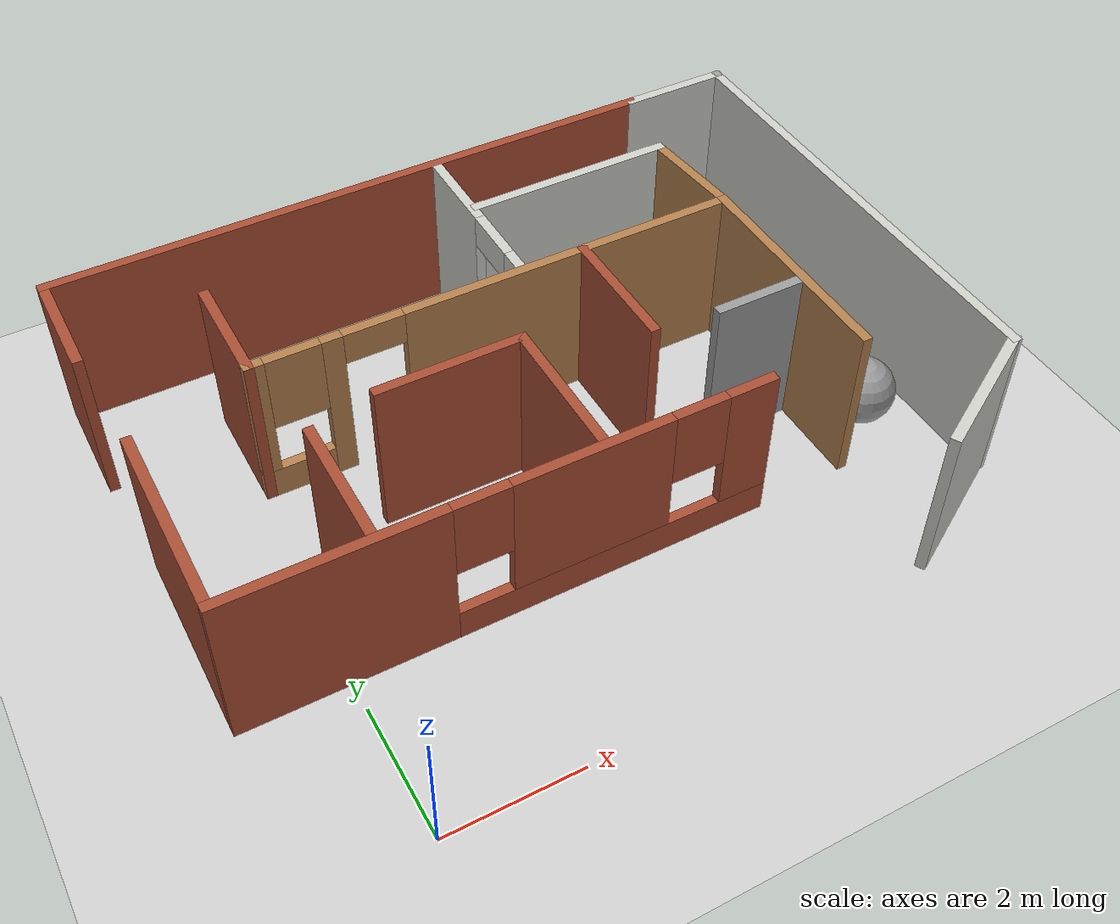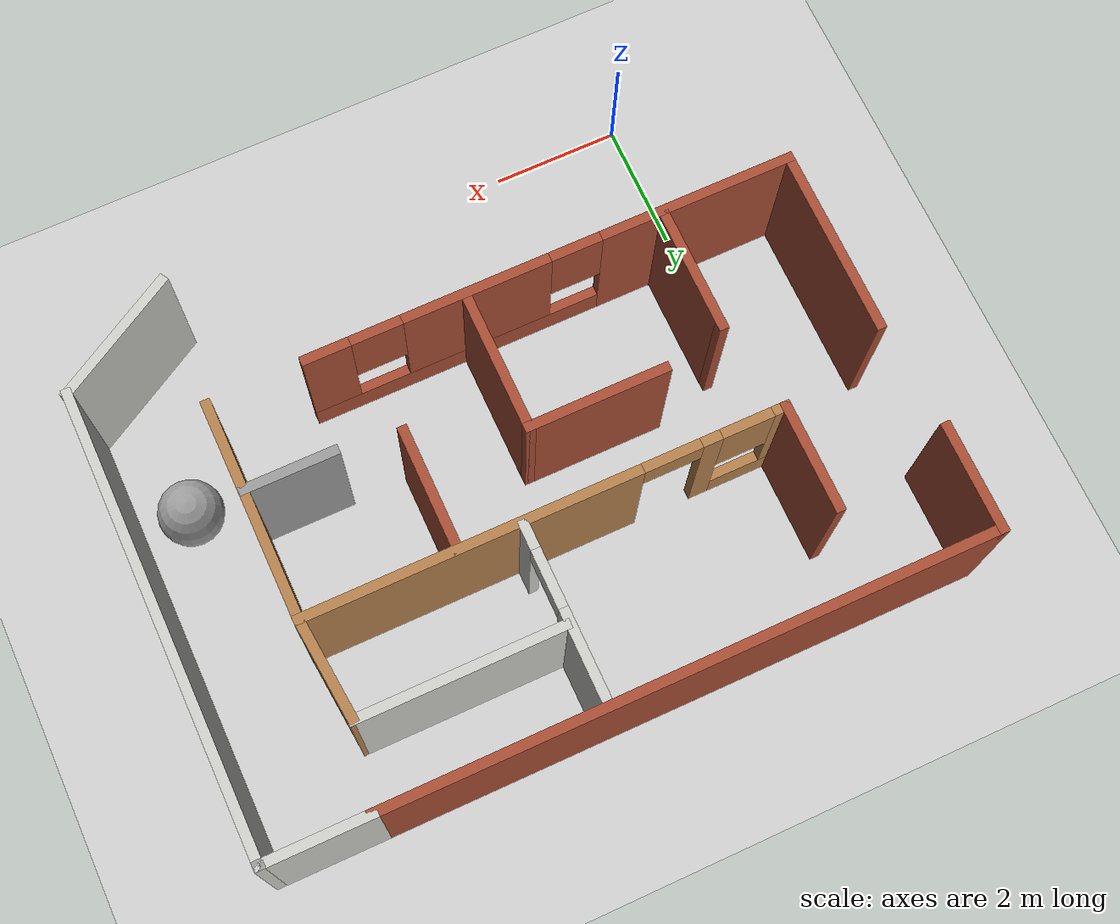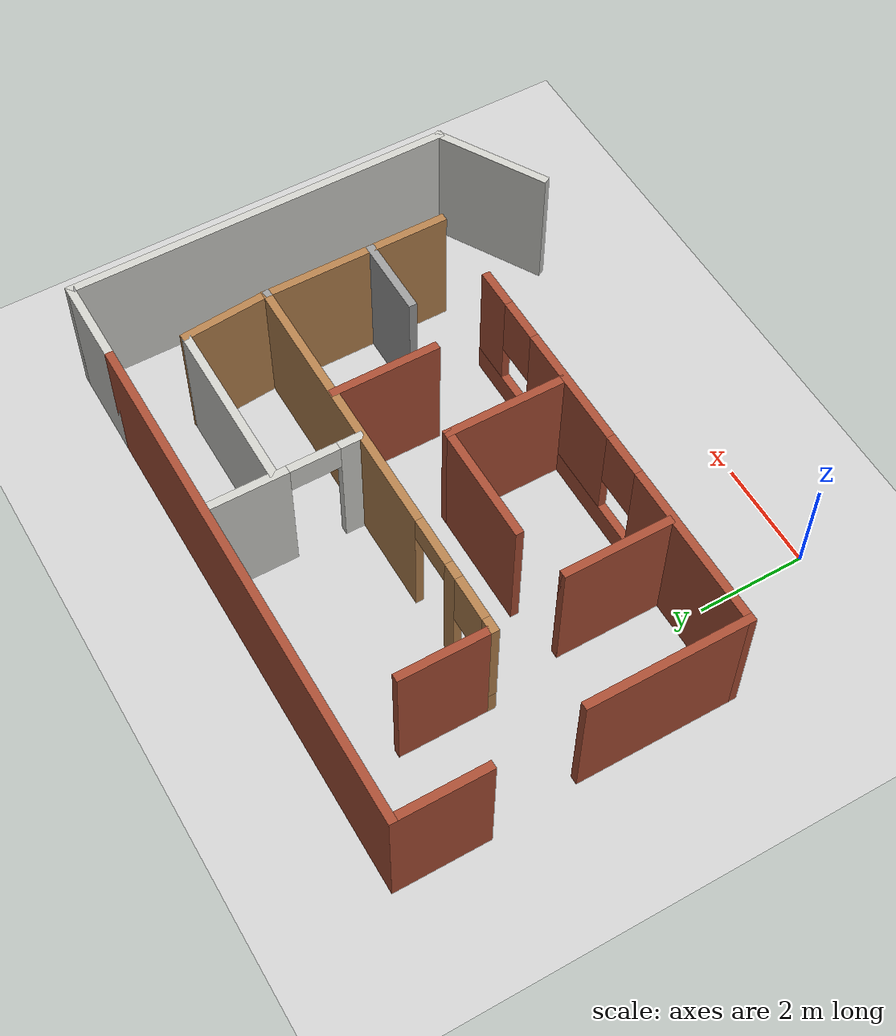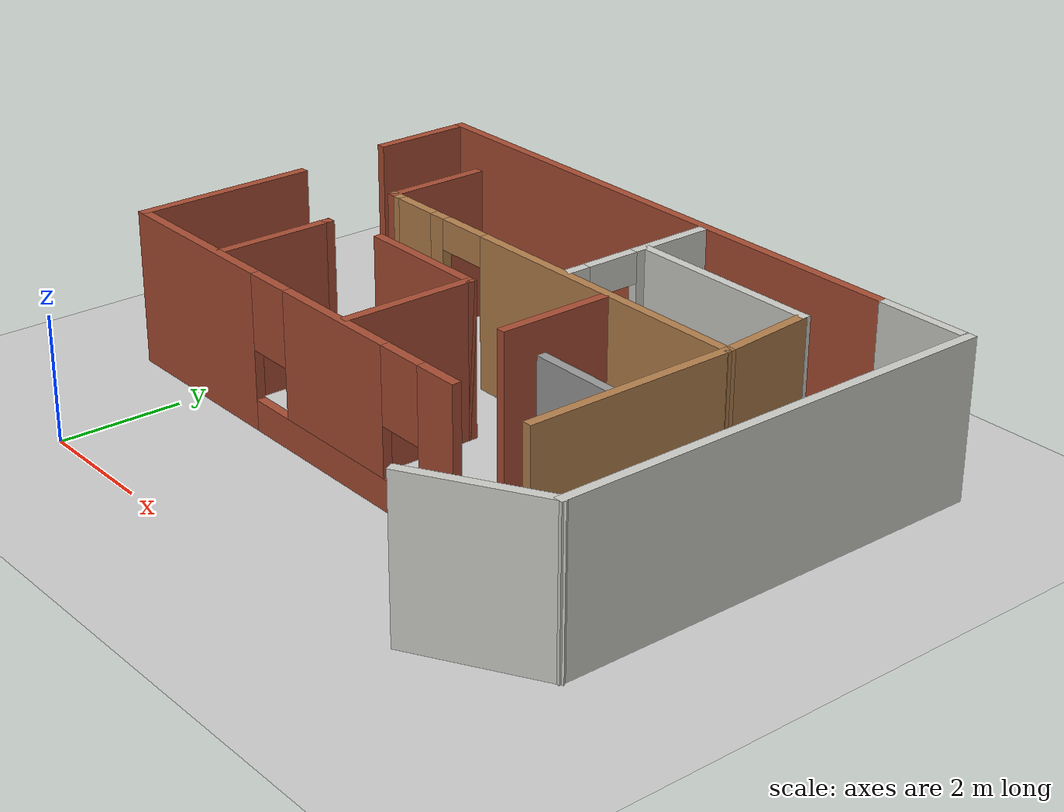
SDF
<sdf version="1.7">
 <world name="default">
  <light name="sun" type="directional">
   <pose>0 0 10 0 -0 0</pose>
   <diffuse>0.8 0.8 0.8 1</diffuse>
   <specular>0.2 0.2 0.2 1</specular>
   <attenuation>
    <range>1000</range>
    <constant>0.9</constant>
    <linear>0.01</linear>
    <quadratic>0.001</quadratic>
   </attenuation>
   <direction>-0.5 0.1 -0.9</direction>
   <spot><inner_angle>0</inner_angle><outer_angle>0</outer_angle><falloff>0</falloff></spot>
  </light>
  <model name="ground_plane">
   <static>1</static>
   <link name="link">
    <collision name="collision">
     <geometry><plane><normal>0 0 1</normal><size>100 100</size></plane></geometry>
     <surface><friction><ode><mu>100</mu><mu2>50</mu2></ode></friction></surface>
    </collision>
    <visual name="visual">
     <cast_shadows>0</cast_shadows>
     <geometry><plane><normal>0 0 1</normal><size>100 100</size></plane></geometry>
     <material>
      <script><uri>file://media/materials/scripts/gazebo.material</uri><name>Gazebo/Grey</name></script>
     </material>
    </visual>
   </link>
  </model>
  <gravity>0 0 -9.8</gravity>
  <magnetic_field>6e-06 2.3e-05 -4.2e-05</magnetic_field>
  <atmosphere type="adiabatic"/>
  <physics type="ode">
   <max_step_size>0.001</max_step_size>
   <real_time_factor>1</real_time_factor>
   <real_time_update_rate>1000</real_time_update_rate>
  </physics>
  <scene><ambient>0.4 0.4 0.4 1</ambient><background>0.7 0.7 0.7 1</background><shadows>1</shadows></scene>
  <audio><device>default</device></audio>
  <spherical_coordinates>
   <surface_model>EARTH_WGS84</surface_model>
   <latitude_deg>0</latitude_deg>
   <longitude_deg>0</longitude_deg>
   <elevation>0</elevation>
   <heading_deg>0</heading_deg>
  </spherical_coordinates>
  <model name="Untitled">
   <pose>3.83985 4.38129 0 0 -0 0</pose>
   <link name="Wall_17">
    <pose>-1.55573 -1.88221 0 0 -0 0</pose>
    <visual name="Wall_17_Visual_0">
     <pose>-2.32929 0 1.25 0 -0 0</pose>
     <geometry><box><size>3.09143 0.15 2.5</size></box></geometry>
     <material>
      <script><uri>file://media/materials/scripts/gazebo.material</uri><name>Gazebo/Bricks</name></script>
      <ambient>1 1 1 1</ambient>
     </material>
     <meta><layer>0</layer></meta>
    </visual>
    <collision name="Wall_17_Collision_0">
     <geometry><box><size>3.09143 0.15 2.5</size></box></geometry>
     <pose>-2.32929 0 1.25 0 -0 0</pose>
    </collision>
    <visual name="Wall_17_Visual_1">
     <pose>1.54571 0 0.25 0 -0 0</pose>
     <geometry><box><size>4.65857 0.15 0.5</size></box></geometry>
     <material>
      <script><uri>file://media/materials/scripts/gazebo.material</uri><name>Gazebo/Bricks</name></script>
      <ambient>1 1 1 1</ambient>
     </material>
     <meta><layer>0</layer></meta>
    </visual>
    <collision name="Wall_17_Collision_1">
     <geometry><box><size>4.65857 0.15 0.5</size></box></geometry>
     <pose>1.54571 0 0.25 0 -0 0</pose>
    </collision>
    <visual name="Wall_17_Visual_2">
     <pose>1.17304 0 1.5 0 -0 0</pose>
     <geometry><box><size>2.31323 0.15 2</size></box></geometry>
     <material>
      <script><uri>file://media/materials/scripts/gazebo.material</uri><name>Gazebo/Bricks</name></script>
      <ambient>1 1 1 1</ambient>
     </material>
     <meta><layer>0</layer></meta>
    </visual>
    <collision name="Wall_17_Collision_2">
     <geometry><box><size>2.31323 0.15 2</size></box></geometry>
     <pose>1.17304 0 1.5 0 -0 0</pose>
    </collision>
    <visual name="Wall_17_Visual_3">
     <pose>3.50233 0 1.5 0 -0 0</pose>
     <geometry><box><size>0.74534 0.15 2</size></box></geometry>
     <material>
      <script><uri>file://media/materials/scripts/gazebo.material</uri><name>Gazebo/Bricks</name></script>
      <ambient>1 1 1 1</ambient>
     </material>
     <meta><layer>0</layer></meta>
    </visual>
    <collision name="Wall_17_Collision_3">
     <geometry><box><size>0.74534 0.15 2</size></box></geometry>
     <pose>3.50233 0 1.5 0 -0 0</pose>
    </collision>
    <visual name="Wall_17_Visual_4">
     <pose>-0.383571 0 1.9 0 -0 0</pose>
     <geometry><box><size>0.8 0.15 1.2</size></box></geometry>
     <material>
      <script><uri>file://media/materials/scripts/gazebo.material</uri><name>Gazebo/Bricks</name></script>
      <ambient>1 1 1 1</ambient>
     </material>
     <meta><layer>0</layer></meta>
    </visual>
    <collision name="Wall_17_Collision_4">
     <geometry><box><size>0.8 0.15 1.2</size></box></geometry>
     <pose>-0.383571 0 1.9 0 -0 0</pose>
    </collision>
    <visual name="Wall_17_Visual_5">
     <pose>2.72966 0 1.9 0 -0 0</pose>
     <geometry><box><size>0.8 0.15 1.2</size></box></geometry>
     <material>
      <script><uri>file://media/materials/scripts/gazebo.material</uri><name>Gazebo/Bricks</name></script>
      <ambient>1 1 1 1</ambient>
     </material>
     <meta><layer>0</layer></meta>
    </visual>
    <collision name="Wall_17_Collision_5">
     <geometry><box><size>0.8 0.15 1.2</size></box></geometry>
     <pose>2.72966 0 1.9 0 -0 0</pose>
    </collision>
   </link>
   <link name="Wall_19">
    <collision name="Wall_19_Collision">
     <geometry><box><size>3.5 0.15 2.5</size></box></geometry>
     <pose>0 0 1.25 0 -0 0</pose>
    </collision>
    <visual name="Wall_19_Visual">
     <pose>0 0 1.25 0 -0 0</pose>
     <geometry><box><size>3.5 0.15 2.5</size></box></geometry>
     <material>
      <script><uri>file://media/materials/scripts/gazebo.material</uri><name>Gazebo/Wood</name></script>
      <ambient>1 1 1 1</ambient>
     </material>
     <meta><layer>0</layer></meta>
    </visual>
    <pose>3.75227 -0.161208 0 0 -0 1.5708</pose>
   </link>
   <link name="Wall_20">
    <collision name="Wall_20_Collision">
     <geometry><box><size>0.15 0.15 2.5</size></box></geometry>
     <pose>0 0 1.25 0 -0 0</pose>
    </collision>
    <visual name="Wall_20_Visual">
     <pose>0 0 1.25 0 -0 0</pose>
     <geometry><box><size>0.15 0.15 2.5</size></box></geometry>
     <material>
      <script><uri>file://media/materials/scripts/gazebo.material</uri><name>Gazebo/Grey</name></script>
      <ambient>1 1 1 1</ambient>
     </material>
     <meta><layer>0</layer></meta>
    </visual>
    <pose>3.75227 1.51379 0 0 -0 0</pose>
   </link>
   <link name="Wall_21">
    <pose>0.077274 1.51379 0 0 -0 3.14159</pose>
    <visual name="Wall_21_Visual_0">
     <pose>-1.14419 0 1.25 0 -0 0</pose>
     <geometry><box><size>5.21163 0.15 2.5</size></box></geometry>
     <material>
      <script><uri>file://media/materials/scripts/gazebo.material</uri><name>Gazebo/Wood</name></script>
      <ambient>1 1 1 1</ambient>
     </material>
     <meta><layer>0</layer></meta>
    </visual>
    <collision name="Wall_21_Collision_0">
     <geometry><box><size>5.21163 0.15 2.5</size></box></geometry>
     <pose>-1.14419 0 1.25 0 -0 0</pose>
    </collision>
    <visual name="Wall_21_Visual_1">
     <pose>2.5138 0 1.25 0 -0 0</pose>
     <geometry><box><size>0.304344 0.15 2.5</size></box></geometry>
     <material>
      <script><uri>file://media/materials/scripts/gazebo.material</uri><name>Gazebo/Wood</name></script>
      <ambient>1 1 1 1</ambient>
     </material>
     <meta><layer>0</layer></meta>
    </visual>
    <collision name="Wall_21_Collision_1">
     <geometry><box><size>0.304344 0.15 2.5</size></box></geometry>
     <pose>2.5138 0 1.25 0 -0 0</pose>
    </collision>
    <visual name="Wall_21_Visual_2">
     <pose>3.20799 0 0.25 0 -0 0</pose>
     <geometry><box><size>1.08403 0.15 0.5</size></box></geometry>
     <material>
      <script><uri>file://media/materials/scripts/gazebo.material</uri><name>Gazebo/Wood</name></script>
      <ambient>1 1 1 1</ambient>
     </material>
     <meta><layer>0</layer></meta>
    </visual>
    <collision name="Wall_21_Collision_2">
     <geometry><box><size>1.08403 0.15 0.5</size></box></geometry>
     <pose>3.20799 0 0.25 0 -0 0</pose>
    </collision>
    <visual name="Wall_21_Visual_3">
     <pose>3.60799 0 1.5 0 -0 0</pose>
     <geometry><box><size>0.284025 0.15 2</size></box></geometry>
     <material>
      <script><uri>file://media/materials/scripts/gazebo.material</uri><name>Gazebo/Wood</name></script>
      <ambient>1 1 1 1</ambient>
     </material>
     <meta><layer>0</layer></meta>
    </visual>
    <collision name="Wall_21_Collision_3">
     <geometry><box><size>0.284025 0.15 2</size></box></geometry>
     <pose>3.60799 0 1.5 0 -0 0</pose>
    </collision>
    <visual name="Wall_21_Visual_4">
     <pose>3.06597 0 1.9 0 -0 0</pose>
     <geometry><box><size>0.8 0.15 1.2</size></box></geometry>
     <material>
      <script><uri>file://media/materials/scripts/gazebo.material</uri><name>Gazebo/Wood</name></script>
      <ambient>1 1 1 1</ambient>
     </material>
     <meta><layer>0</layer></meta>
    </visual>
    <collision name="Wall_21_Collision_4">
     <geometry><box><size>0.8 0.15 1.2</size></box></geometry>
     <pose>3.06597 0 1.9 0 -0 0</pose>
    </collision>
    <visual name="Wall_21_Visual_5">
     <pose>1.91163 0 2.25 0 -0 0</pose>
     <geometry><box><size>0.9 0.15 0.5</size></box></geometry>
     <material>
      <script><uri>file://media/materials/scripts/gazebo.material</uri><name>Gazebo/Wood</name></script>
      <ambient>1 1 1 1</ambient>
     </material>
     <meta><layer>0</layer></meta>
    </visual>
    <collision name="Wall_21_Collision_5">
     <geometry><box><size>0.9 0.15 0.5</size></box></geometry>
     <pose>1.91163 0 2.25 0 -0 0</pose>
    </collision>
   </link>
   <link name="Wall_23">
    <collision name="Wall_23_Collision">
     <geometry><box><size>3 0.15 2.5</size></box></geometry>
     <pose>0 0 1.25 0 -0 0</pose>
    </collision>
    <visual name="Wall_23_Visual">
     <pose>0 0 1.25 0 -0 0</pose>
     <geometry><box><size>3 0.15 2.5</size></box></geometry>
     <material>
      <script><uri>file://media/materials/scripts/gazebo.material</uri><name>Gazebo/Bricks</name></script>
      <ambient>1 1 1 1</ambient>
     </material>
     <meta><layer>0</layer></meta>
    </visual>
    <pose>-5.35573 -0.457208 0 0 -0 1.5708</pose>
   </link>
   <link name="Wall_25">
    <collision name="Wall_25_Collision">
     <geometry><box><size>1.75 0.15 2.5</size></box></geometry>
     <pose>0 0 1.25 0 -0 0</pose>
    </collision>
    <visual name="Wall_25_Visual">
     <pose>0 0 1.25 0 -0 0</pose>
     <geometry><box><size>1.75 0.15 2.5</size></box></geometry>
     <material>
      <script><uri>file://media/materials/scripts/gazebo.material</uri><name>Gazebo/Bricks</name></script>
      <ambient>1 1 1 1</ambient>
     </material>
     <meta><layer>0</layer></meta>
    </visual>
    <pose>-3.59773 2.31379 0 0 -0 1.5708</pose>
   </link>
   <link name="Wall_27">
    <collision name="Wall_27_Collision">
     <geometry><box><size>1.75 0.15 2.5</size></box></geometry>
     <pose>0 0 1.25 0 -0 0</pose>
    </collision>
    <visual name="Wall_27_Visual">
     <pose>0 0 1.25 0 -0 0</pose>
     <geometry><box><size>1.75 0.15 2.5</size></box></geometry>
     <material>
      <script><uri>file://media/materials/scripts/gazebo.material</uri><name>Gazebo/Bricks</name></script>
      <ambient>1 1 1 1</ambient>
     </material>
     <meta><layer>0</layer></meta>
    </visual>
    <pose>-5.49373 3.50629 0 0 -0 1.5708</pose>
   </link>
   <link name="Wall_29">
    <collision name="Wall_29_Collision">
     <geometry><box><size>9.5 0.15 2.5</size></box></geometry>
     <pose>0 0 1.25 0 -0 0</pose>
    </collision>
    <visual name="Wall_29_Visual">
     <pose>0 0 1.25 0 -0 0</pose>
     <geometry><box><size>9.5 0.15 2.5</size></box></geometry>
     <material>
      <script><uri>file://media/materials/scripts/gazebo.material</uri><name>Gazebo/Bricks</name></script>
      <ambient>1 1 1 1</ambient>
     </material>
     <meta><layer>0</layer></meta>
    </visual>
    <pose>-0.818726 4.30629 0 0 -0 0</pose>
   </link>
   <link name="Wall_30">
    <collision name="Wall_30_Collision">
     <geometry><box><size>1.75 0.15 2.5</size></box></geometry>
     <pose>0 0 1.25 0 -0 0</pose>
    </collision>
    <visual name="Wall_30_Visual">
     <pose>0 0 1.25 0 -0 0</pose>
     <geometry><box><size>1.75 0.15 2.5</size></box></geometry>
     <material>
      <script><uri>file://media/materials/scripts/gazebo.material</uri><name>Gazebo/CeilingTiled</name></script>
      <ambient>1 1 1 1</ambient>
     </material>
     <meta><layer>0</layer></meta>
    </visual>
    <pose>4.65627 4.30629 0 0 -0 0</pose>
   </link>
   <link name="Wall_31">
    <collision name="Wall_31_Collision">
     <geometry><box><size>0.16 0.15 2.5</size></box></geometry>
     <pose>0 0 1.25 0 -0 0</pose>
    </collision>
    <visual name="Wall_31_Visual">
     <pose>0 0 1.25 0 -0 0</pose>
     <geometry><box><size>0.16 0.15 2.5</size></box></geometry>
     <material>
      <script><uri>file://media/materials/scripts/gazebo.material</uri><name>Gazebo/Grey</name></script>
      <ambient>1 1 1 1</ambient>
     </material>
     <meta><layer>0</layer></meta>
    </visual>
    <pose>5.46127 4.30629 0 0 -0 0</pose>
   </link>
   <link name="Wall_32">
    <collision name="Wall_32_Collision">
     <geometry><box><size>7.25 0.15 2.5</size></box></geometry>
     <pose>0 0 1.25 0 -0 0</pose>
    </collision>
    <visual name="Wall_32_Visual">
     <pose>0 0 1.25 0 -0 0</pose>
     <geometry><box><size>7.25 0.15 2.5</size></box></geometry>
     <material>
      <script><uri>file://media/materials/scripts/gazebo.material</uri><name>Gazebo/CeilingTiled</name></script>
      <ambient>1 1 1 1</ambient>
     </material>
     <meta><layer>0</layer></meta>
    </visual>
    <pose>5.46627 0.756292 0 0 -0 -1.5708</pose>
   </link>
   <link name="Wall_35">
    <collision name="Wall_35_Collision">
     <geometry><box><size>2.25 0.15 2.5</size></box></geometry>
     <pose>0 0 1.25 0 -0 0</pose>
    </collision>
    <visual name="Wall_35_Visual">
     <pose>0 0 1.25 0 -0 0</pose>
     <geometry><box><size>2.25 0.15 2.5</size></box></geometry>
     <material>
      <script><uri>file://media/materials/scripts/gazebo.material</uri><name>Gazebo/CeilingTiled</name></script>
      <ambient>1 1 1 1</ambient>
     </material>
     <meta><layer>0</layer></meta>
    </visual>
    <pose>4.55695 -3.31871 0 0 -0 -2.61799</pose>
   </link>
   <link name="Wall_37">
    <collision name="Wall_37_Collision">
     <geometry><box><size>2 0.15 2.5</size></box></geometry>
     <pose>0 0 1.25 0 -0 0</pose>
    </collision>
    <visual name="Wall_37_Visual">
     <pose>0 0 1.25 0 -0 0</pose>
     <geometry><box><size>2 0.15 2.5</size></box></geometry>
     <material>
      <script><uri>file://media/materials/scripts/gazebo.material</uri><name>Gazebo/Bricks</name></script>
      <ambient>1 1 1 1</ambient>
     </material>
     <meta><layer>0</layer></meta>
    </visual>
    <pose>-3.32101 -0.866532 0 0 -0 1.5708</pose>
   </link>
   <link name="Wall_38">
    <collision name="Wall_38_Collision">
     <geometry><box><size>0.15 0.15 2.5</size></box></geometry>
     <pose>0 0 1.25 0 -0 0</pose>
    </collision>
    <visual name="Wall_38_Visual">
     <pose>0 0 1.25 0 -0 0</pose>
     <geometry><box><size>0.15 0.15 2.5</size></box></geometry>
     <material>
      <script><uri>file://media/materials/scripts/gazebo.material</uri><name>Gazebo/Bricks</name></script>
      <ambient>1 1 1 1</ambient>
     </material>
     <meta><layer>0</layer></meta>
    </visual>
    <pose>-3.32101 0.058468 0 0 -0 0</pose>
   </link>
   <link name="Wall_40">
    <collision name="Wall_40_Collision">
     <geometry><box><size>2.25 0.15 2.5</size></box></geometry>
     <pose>0 0 1.25 0 -0 0</pose>
    </collision>
    <visual name="Wall_40_Visual">
     <pose>0 0 1.25 0 -0 0</pose>
     <geometry><box><size>2.25 0.15 2.5</size></box></geometry>
     <material>
      <script><uri>file://media/materials/scripts/gazebo.material</uri><name>Gazebo/Bricks</name></script>
      <ambient>1 1 1 1</ambient>
     </material>
     <meta><layer>0</layer></meta>
    </visual>
    <pose>-0.207781 -0.741532 0 0 -0 1.5708</pose>
   </link>
   <link name="Wall_41">
    <collision name="Wall_41_Collision">
     <geometry><box><size>0.15 0.15 2.5</size></box></geometry>
     <pose>0 0 1.25 0 -0 0</pose>
    </collision>
    <visual name="Wall_41_Visual">
     <pose>0 0 1.25 0 -0 0</pose>
     <geometry><box><size>0.15 0.15 2.5</size></box></geometry>
     <material>
      <script><uri>file://media/materials/scripts/gazebo.material</uri><name>Gazebo/Bricks</name></script>
      <ambient>1 1 1 1</ambient>
     </material>
     <meta><layer>0</layer></meta>
    </visual>
    <pose>-0.207781 0.308468 0 0 -0 0</pose>
   </link>
   <link name="Wall_42">
    <collision name="Wall_42_Collision">
     <geometry><box><size>2.25 0.15 2.5</size></box></geometry>
     <pose>0 0 1.25 0 -0 0</pose>
    </collision>
    <visual name="Wall_42_Visual">
     <pose>0 0 1.25 0 -0 0</pose>
     <geometry><box><size>2.25 0.15 2.5</size></box></geometry>
     <material>
      <script><uri>file://media/materials/scripts/gazebo.material</uri><name>Gazebo/Bricks</name></script>
      <ambient>1 1 1 1</ambient>
     </material>
     <meta><layer>0</layer></meta>
    </visual>
    <pose>-1.25778 0.308468 0 0 -0 3.14159</pose>
   </link>
   <link name="Wall_44">
    <collision name="Wall_44_Collision">
     <geometry><box><size>2 0.15 2.5</size></box></geometry>
     <pose>0 0 1.25 0 -0 0</pose>
    </collision>
    <visual name="Wall_44_Visual">
     <pose>0 0 1.25 0 -0 0</pose>
     <geometry><box><size>2 0.15 2.5</size></box></geometry>
     <material>
      <script><uri>file://media/materials/scripts/gazebo.material</uri><name>Gazebo/Bricks</name></script>
      <ambient>1 1 1 1</ambient>
     </material>
     <meta><layer>0</layer></meta>
    </visual>
    <pose>1.40131 0.5716 0 0 -0 -1.5708</pose>
   </link>
   <link name="Wall_46">
    <collision name="Wall_46_Collision">
     <geometry><box><size>1.5 0.15 2.5</size></box></geometry>
     <pose>0 0 1.25 0 -0 0</pose>
    </collision>
    <visual name="Wall_46_Visual">
     <pose>0 0 1.25 0 -0 0</pose>
     <geometry><box><size>1.5 0.15 2.5</size></box></geometry>
     <material>
      <script><uri>file://media/materials/scripts/gazebo.material</uri><name>Gazebo/Grey</name></script>
      <ambient>1 1 1 1</ambient>
     </material>
     <meta><layer>0</layer></meta>
    </visual>
    <pose>3.06997 -0.479777 0 0 -0 3.14159</pose>
   </link>
   <link name="Wall_48">
    <pose>0.439352 2.86656 0 0 -0 1.5708</pose>
    <visual name="Wall_48_Visual_0">
     <pose>-1.15148 0 1.25 0 -0 0</pose>
     <geometry><box><size>0.447033 0.15 2.5</size></box></geometry>
     <material>
      <script><uri>file://media/materials/scripts/gazebo.material</uri><name>Gazebo/CeilingTiled</name></script>
      <ambient>1 1 1 1</ambient>
     </material>
     <meta><layer>0</layer></meta>
    </visual>
    <collision name="Wall_48_Collision_0">
     <geometry><box><size>0.447033 0.15 2.5</size></box></geometry>
     <pose>-1.15148 0 1.25 0 -0 0</pose>
    </collision>
    <visual name="Wall_48_Visual_1">
     <pose>0.673516 0 1.25 0 -0 0</pose>
     <geometry><box><size>1.40297 0.15 2.5</size></box></geometry>
     <material>
      <script><uri>file://media/materials/scripts/gazebo.material</uri><name>Gazebo/CeilingTiled</name></script>
      <ambient>1 1 1 1</ambient>
     </material>
     <meta><layer>0</layer></meta>
    </visual>
    <collision name="Wall_48_Collision_1">
     <geometry><box><size>1.40297 0.15 2.5</size></box></geometry>
     <pose>0.673516 0 1.25 0 -0 0</pose>
    </collision>
    <visual name="Wall_48_Visual_2">
     <pose>-0.477967 0 2.25 0 -0 0</pose>
     <geometry><box><size>0.9 0.15 0.5</size></box></geometry>
     <material>
      <script><uri>file://media/materials/scripts/gazebo.material</uri><name>Gazebo/CeilingTiled</name></script>
      <ambient>1 1 1 1</ambient>
     </material>
     <meta><layer>0</layer></meta>
    </visual>
    <collision name="Wall_48_Collision_2">
     <geometry><box><size>0.9 0.15 0.5</size></box></geometry>
     <pose>-0.477967 0 2.25 0 -0 0</pose>
    </collision>
   </link>
   <link name="Wall_50">
    <collision name="Wall_50_Collision">
     <geometry><box><size>3.25 0.15 2.5</size></box></geometry>
     <pose>0 0 1.25 0 -0 0</pose>
    </collision>
    <visual name="Wall_50_Visual">
     <pose>0 0 1.25 0 -0 0</pose>
     <geometry><box><size>3.25 0.15 2.5</size></box></geometry>
     <material>
      <script><uri>file://media/materials/scripts/gazebo.material</uri><name>Gazebo/CeilingTiled</name></script>
      <ambient>1 1 1 1</ambient>
     </material>
     <meta><layer>0</layer></meta>
    </visual>
    <pose>2.05931 3.07071 0 0 -0 0</pose>
   </link>
   <link name="Wall_52">
    <collision name="Wall_52_Collision">
     <geometry><box><size>1.71346 0.15 2.5</size></box></geometry>
     <pose>0 0 1.25 0 -0 0</pose>
    </collision>
    <visual name="Wall_52_Visual">
     <pose>0 0 1.25 0 -0 0</pose>
     <geometry><box><size>1.71346 0.15 2.5</size></box></geometry>
     <material>
      <script><uri>file://media/materials/scripts/gazebo.material</uri><name>Gazebo/Wood</name></script>
      <ambient>1 1 1 1</ambient>
     </material>
     <meta><layer>0</layer></meta>
    </visual>
    <pose>3.68079 2.29225 0 0 -0 -1.47923</pose>
   </link>
   <static>1</static>
  </model>
  <model name="unit_sphere">
   <pose>8.44225 3.25154 0.5 0 -0 0</pose>
   <link name="link">
    <inertial>
     <mass>1</mass>
     <inertia><ixx>0.1</ixx><ixy>0</ixy><ixz>0</ixz><iyy>0.1</iyy><iyz>0</iyz><izz>0.1</izz></inertia>
    </inertial>
    <collision name="collision"><geometry><sphere><radius>0.5</radius></sphere></geometry></collision>
    <visual name="visual">
     <geometry><sphere><radius>0.5</radius></sphere></geometry>
     <material>
      <script><name>Gazebo/Grey</name><uri>file://media/materials/scripts/gazebo.material</uri></script>
     </material>
    </visual>
   </link>
  </model>
 </world>
</sdf>
